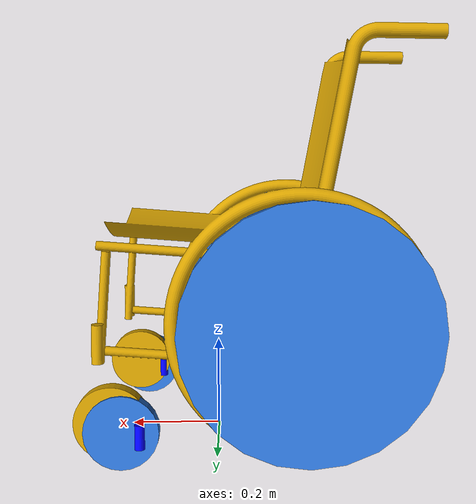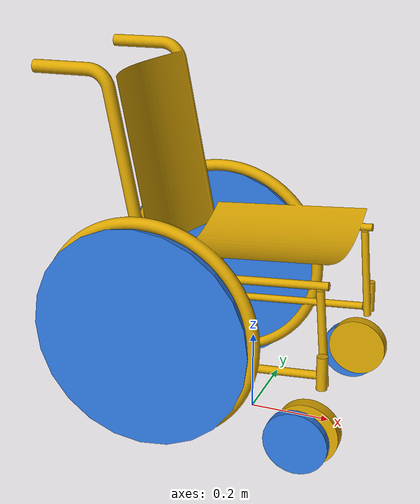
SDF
<?xml version="1.0" ?>
<sdf version="1.5">
  <model name="wheelchair">
  <pose>0.0 0.0 0.0 0.0 0.0 0.0</pose>

    <link name="base_footprint"/>

    <link name="base_link">

      <inertial>
          <pose>0.000602 0 0.476823 0 -0 0</pose>
          <mass>70.435</mass>
          <inertia>
            <ixx>3.02781</ixx>
            <ixy>0</ixy>
            <ixz>-0.012125</ixz>
            <iyy>3.43197</iyy>
            <iyz>0</iyz>
            <izz>0.968001</izz>
          </inertia>
        </inertial>

      <collision name="base_collision">
        <pose>-0.4 0 0.01 -0.1 -0.0 1.57</pose>
        <geometry>
          <mesh>
            <uri>model://wheelchair/meshes/Wheelchair.stl</uri>
            <scale>0.001 0.001 0.001</scale>
          </mesh>
        </geometry>
      </collision>

      <visual name="base_visual">
        <pose>-0.4 0 0.01 -0.1 -0.0 1.57</pose>
          <geometry>
          <mesh>
            <uri>model://wheelchair/meshes/Wheelchair.stl</uri>
            <scale>0.001 0.001 0.001</scale>
          </mesh>
        </geometry>
          <material>
            <ambient>0.8392 0.6314 0 1</ambient>
            <diffuse>0.8392 0.6314 0 1</diffuse>
            <specular>0.99 0.99 0.99 1</specular>
            <emissive>0 0 0 0</emissive>
          </material>
        </visual>
    </link>

    <!-- Joints  -->

    <joint name="base_joint" type="fixed">
      <parent>base_footprint</parent>
      <child>base_link</child>
      <pose>0.0 0.0 0.010 0 0 0</pose>
    </joint>

<!-- Wheels -->
          <joint name='front_left_wheel_joint' type='revolute'>
        <pose relative_to='base_link'>0.19 0.25 0.076 0 -0 0</pose>
        <parent>base_link</parent>
        <child>front_left_wheel_link</child>
        <axis>
          <xyz>0 1 0</xyz>
          <limit>
              <lower>-1e+16</lower>
              <upper>1e+16</upper>
            </limit>
            <dynamics>
              <damping>0.0</damping> <!-- Minimal resistance for free rolling -->
            </dynamics>
          <dynamics>
            <spring_reference>0</spring_reference>
            <spring_stiffness>0</spring_stiffness>
          </dynamics>
        </axis>
      </joint>

      <joint name="front_left_wheel_swivel_joint" type="revolute">
        <parent>base_link</parent>
        <child>front_left_wheel_swivel_link</child>
        <axis>
          <xyz>0 0 1</xyz> <!-- Vertical axis for swivel -->
          <limit>
            <lower>-1e+16</lower>
            <upper>1e+16</upper>
          </limit>
          <dynamics>
            <damping>1.0</damping> <!-- Minimal resistance for free rolling -->
          </dynamics>

        </axis>
      </joint>

      <link name='front_left_wheel_link'>
        <pose relative_to='front_left_wheel_joint'>0 0 0 0 -0 0</pose>
        <inertial>
          <pose>0 0 0 0 -0 0</pose>
          <mass>0.6</mass>
          <inertia>
            <ixx>0.00138624</ixx>
            <ixy>0</ixy>
            <ixz>0</ixz>
            <iyy>0.00138624</iyy>
            <iyz>0</iyz>
            <izz>0.00138624</izz>
          </inertia>
        </inertial>
        <collision name='front_left_wheel_link_collision'>
          <pose>0 0 0 1.5708 -0 0</pose>
          <geometry>
            <cylinder>
              <length>0.026</length>
              <radius>0.076</radius>
            </cylinder>
          </geometry>
          <surface>
            <contact>
              <ode/>
            </contact>
            <friction>
              <ode>
                <mu>0.01</mu>
                <mu2>0.01</mu2>
              </ode>
              <torsional>
                <ode/>
              </torsional>
            </friction>
            <bounce/>
          </surface>
          <max_contacts>10</max_contacts>
        </collision>
        <visual name='front_left_wheel_link_visual'>
          <pose>0 0 0 1.5708 -0 0</pose>
          <geometry>
            <cylinder>
              <length>0.026</length>
              <radius>0.076</radius>
            </cylinder>
          </geometry>
          <material>
            <ambient>0.1764 0.4588 0.8509 1</ambient>
            <diffuse>0.1764 0.4588 0.8509 1</diffuse>
            <specular>0.1764 0.4588 0.8509 1</specular>
            <emissive>0 0 0 0</emissive>
          </material>
        </visual>
        <self_collide>0</self_collide>
        <enable_wind>0</enable_wind>
        <kinematic>0</kinematic>
      </link>

      <!-- Swivel link for front left wheel -->
      <link name="front_left_wheel_swivel_link">
          <pose>0.15 0.28 0.076 0 -0 0</pose>
          <visual name="front_left_wheel_swivel_visual">
              <geometry>
                  <cylinder>
                      <radius>0.01</radius> <!-- Small cylinder for visualization -->
                      <length>0.05</length>
                  </cylinder>
              </geometry>
              <material>
                  <ambient>0 0 1 1</ambient> <!-- Blue for visibility -->
                  <diffuse>0 0 1 1</diffuse>
                  <specular>0.99 0.99 0.99 1</specular>
              </material>
          </visual>
      </link>

      <joint name='front_right_wheel_joint' type='revolute'>
        <pose relative_to='base_link'>0.19 -0.24 0.076 0 -0 0</pose>
        <parent>base_link</parent>
        <child>front_right_wheel_link</child>
        <axis>
          <xyz>0 1 0</xyz>
          <limit>
            <lower>-1e+16</lower>
            <upper>1e+16</upper>
          </limit>
          <dynamics>
            <damping>1.0</damping> <!-- Minimal resistance for free rolling -->
          </dynamics>
          <dynamics>
            <spring_reference>0</spring_reference>
            <spring_stiffness>0</spring_stiffness>
          </dynamics>
        </axis>
      </joint>

      <joint name='front_right_wheel_swivel_joint' type='revolute'>
        <pose relative_to='base_link'>0.15 -0.21 0.076 0 -0 0</pose>
        <parent>base_link</parent>
        <child>front_right_wheel_swivel_link</child>
        <axis>
          <xyz>0 0 1</xyz>
          <limit>
            <lower>-1e+16</lower>
            <upper>1e+16</upper>
          </limit>
          <dynamics>
            <damping>0.0</damping> <!-- Minimal resistance for free rolling -->
          </dynamics>
          <dynamics>
            <spring_reference>0</spring_reference>
            <spring_stiffness>0</spring_stiffness>
          </dynamics>
        </axis>
      </joint>

      <link name='front_right_wheel_link'>
        <pose relative_to='front_right_wheel_joint'>0 0 0 0 -0 0</pose>
        <inertial>
          <pose>0 0 0 0 -0 0</pose>
          <mass>0.6</mass>
          <inertia>
            <ixx>0.00138624</ixx>
            <ixy>0</ixy>
            <ixz>0</ixz>
            <iyy>0.00138624</iyy>
            <iyz>0</iyz>
            <izz>0.00138624</izz>
          </inertia>
        </inertial>
        <collision name='front_right_wheel_link_collision'>
          <pose>0 0 0 1.5708 -0 0</pose>
          <geometry>
            <cylinder>
              <length>0.026</length>
              <radius>0.076</radius>
            </cylinder>
          </geometry>
          <surface>
            <contact>
              <ode/>
            </contact>
            <friction>
              <ode>
                <mu>0.01</mu>
                <mu2>0.01</mu2>
              </ode>
              <torsional>
                <ode/>
              </torsional>
            </friction>
            <bounce/>
          </surface>
          <max_contacts>10</max_contacts>
        </collision>
        <visual name='front_right_wheel_link_visual'>
          <pose>0 0 0 1.5708 -0 0</pose>
          <geometry>
            <cylinder>
              <length>0.026</length>
              <radius>0.076</radius>
            </cylinder>
          </geometry>
          <material>
            <ambient>0.1764 0.4588 0.8509 1</ambient>
            <diffuse>0.1764 0.4588 0.8509 1</diffuse>
            <specular>0.1764 0.4588 0.8509 1</specular>
            <emissive>0 0 0 0</emissive>
          </material>
        </visual>
        <self_collide>0</self_collide>
        <enable_wind>0</enable_wind>
        <kinematic>0</kinematic>
      </link>

      <link name="front_right_wheel_swivel_link">
        <pose>0.15 -0.21 0.076 0 -0 0</pose>
        <visual name="front_right_wheel_swivel_visual">
            <geometry>
                <cylinder>
                    <radius>0.01</radius>
                    <length>0.05</length>
                </cylinder>
            </geometry>
            <material>
                <ambient>0 0 1 1</ambient> <!-- Blue for visibility -->
                <diffuse>0 0 1 1</diffuse>
                <specular>0.99 0.99 0.99 1</specular>
            </material>
        </visual>
    </link>

      <joint name='rear_left_wheel_joint' type='revolute'>
        <pose relative_to='base_link'>-0.19 0.26 0.27 0 -0 0</pose>
        <parent>base_link</parent>
        <child>rear_left_wheel_link</child>
        <axis>
          <xyz>0 1 0</xyz>
          <limit>
            <lower>-1e+16</lower>
            <upper>1e+16</upper>
          </limit>
          <dynamics>
            <damping>2.0</damping>
            <spring_reference>0</spring_reference>
            <spring_stiffness>0</spring_stiffness>
          </dynamics>
        </axis>
      </joint>
      <link name='rear_left_wheel_link'>
        <pose relative_to='rear_left_wheel_joint'>0 0 0 0 -0 0</pose>
        <inertial>
          <pose>0 0 0 0 -0 0</pose>
          <mass>0.6</mass>
          <inertia>
            <ixx>0.00138624</ixx>
            <ixy>0</ixy>
            <ixz>0</ixz>
            <iyy>0.00138624</iyy>
            <iyz>0</iyz>
            <izz>0.00138624</izz>
          </inertia>
        </inertial>
        <collision name='rear_left_wheel_link_collision'>
          <pose>0 0 0 1.5708 -0 0</pose>
          <geometry>
            <cylinder>
              <length>0.026</length>
              <radius>0.27</radius>
            </cylinder>
          </geometry>
          <surface>
            <contact>
              <ode/>
            </contact>
            <friction>
              <ode>
                <mu>1.5</mu>
                <mu2>1.5</mu2>
              </ode>
              <torsional>
                <ode/>
              </torsional>
            </friction>
            <bounce/>
          </surface>
          <max_contacts>10</max_contacts>
        </collision>
        <visual name='rear_left_wheel_link_visual'>
          <pose>0 0 0 1.5708 -0 0</pose>
          <geometry>
            <cylinder>
              <length>0.026</length>
              <radius>0.27</radius>
            </cylinder>
          </geometry>
          <material>
            <ambient>0.1764 0.4588 0.8509 1</ambient>
            <diffuse>0.1764 0.4588 0.8509 1</diffuse>
            <specular>0.1764 0.4588 0.8509 1</specular>
            <emissive>0 0 0 0</emissive>
          </material>
        </visual>
        <self_collide>0</self_collide>
        <enable_wind>0</enable_wind>
        <kinematic>0</kinematic>
      </link>
      <joint name='rear_right_wheel_joint' type='revolute'>
        <pose relative_to='base_link'>-0.19 -0.25 0.27 0 -0 0</pose>
        <parent>base_link</parent>
        <child>rear_right_wheel_link</child>
        <axis>
          <xyz>0 1 0</xyz>
          <limit>
            <lower>-1e+16</lower>
            <upper>1e+16</upper>
          </limit>
          <dynamics>
            <damping>2.0</damping>
            <spring_reference>0</spring_reference>
            <spring_stiffness>0</spring_stiffness>
          </dynamics>
        </axis>
      </joint>
      <link name='rear_right_wheel_link'>
        <pose relative_to='rear_right_wheel_joint'>0 0 0 0 -0 0</pose>
        <inertial>
          <pose>0 0 0 0 -0 0</pose>
          <mass>0.6</mass>
          <inertia>
            <ixx>0.00138624</ixx>
            <ixy>0</ixy>
            <ixz>0</ixz>
            <iyy>0.00138624</iyy>
            <iyz>0</iyz>
            <izz>0.00138624</izz>
          </inertia>
        </inertial>
        <collision name='rear_right_wheel_link_collision'>
          <pose>0 0 0 1.5708 -0 0</pose>
          <geometry>
            <cylinder>
              <length>0.026</length>
              <radius>0.27</radius>
            </cylinder>
          </geometry>
          <surface>
            <contact>
              <ode/>
            </contact>
            <friction>
              <ode>
                <mu>1.5</mu>
                <mu2>1.5</mu2>
              </ode>
              <torsional>
                <ode/>
              </torsional>
            </friction>
            <bounce/>
          </surface>
          <max_contacts>10</max_contacts>
        </collision>
        <visual name='rear_right_wheel_link_visual'>
          <pose>0 0 0 1.5708 -0 0</pose>
          <geometry>
            <cylinder>
              <length>0.026</length>
              <radius>0.27</radius>
            </cylinder>
          </geometry>
          <material>
            <ambient>0.1764 0.4588 0.8509 1</ambient>
            <diffuse>0.1764 0.4588 0.8509 1</diffuse>
            <specular>0.1764 0.4588 0.8509 1</specular>
            <emissive>0 0 0 0</emissive>
          </material>
        </visual>
        <self_collide>0</self_collide>
        <enable_wind>0</enable_wind>
        <kinematic>0</kinematic>
      </link>

      <!-- Aruco marker front -->
      <joint name="aruco_marker_front_left_joint" type="fixed">
      <parent>base_link</parent>
      <child>aruco_marker_front_left_link</child>
      <pose relative_to="base_link">-0.24 0.17 0.27 0 0 0</pose>
    </joint>
    <link name="aruco_marker_front_left_link">
    <pose relative_to="aruco_marker_front_left_joint">0.0 0.0 0.0 0 0 0</pose>
      <visual name="aruco_marker_front_left_visual">
        <geometry>
          <mesh>
            <uri>model://wheelchair/meshes/Marker20.dae</uri>
          <scale>0.1 0.1 0.1 </scale></mesh>
        </geometry>
      </visual>
    </link>

      <!-- Aruco marker right -->
      <joint name="aruco_marker_front_right_joint" type="fixed">
      <parent>base_link</parent>
      <child>aruco_marker_front_right_link</child>
      <pose relative_to="base_link">-0.24 -0.17 0.27 0 0 0</pose>
    </joint>
    <link name="aruco_marker_front_right_link">
    <pose relative_to="aruco_marker_front_right_joint">0.0 0.0 0.0 0 0 0</pose>
      <visual name="aruco_marker_front_right_visual">
        <geometry>
          <mesh>
            <uri>model://wheelchair/meshes/Marker21.dae</uri>
          <scale>0.1 0.1 0.1 </scale></mesh>
        </geometry>
      </visual>
    </link>

     <!-- Aruco marker right -->
      <joint name="aruco_marker_right_background_joint" type="fixed">
      <parent>aruco_marker_front_right_link</parent>
      <child>aruco_marker_right_background_link</child>
      <pose relative_to="aruco_marker_front_right_link">-0.0 0.0 0.0 0.0 0.0 -0.0</pose>
    </joint>
    <link name="aruco_marker_right_background_link">
    <pose relative_to="aruco_marker_front_right_link">0.005 0.0 -0.01 0 0 0</pose>
      <visual name="aruco_marker_right_background_visual">
        <geometry>
          <mesh>
            <uri>model://wheelchair/meshes/background.dae</uri>
          <scale>0.15 0.15 0.15 </scale></mesh>
        </geometry>
      </visual>
    </link>

    <plugin name="wheelchair_joint_state" filename="libgazebo_ros_joint_state_publisher.so">
      <ros>
        <remapping>~/out:=joint_states</remapping>
      </ros>
      <update_rate>30</update_rate>
      <joint_name>base_joint</joint_name>
      <joint_name>front_left_wheel_joint</joint_name>
      <joint_name>front_left_wheel_swivel_joint</joint_name>
      <joint_name>front_right_wheel_joint</joint_name>
      <joint_name>front_right_wheel_swivel_joint</joint_name>
      <joint_name>rear_left_wheel_joint</joint_name>
      <joint_name>rear_right_wheel_joint</joint_name>

    </plugin>

  </model>
</sdf>
